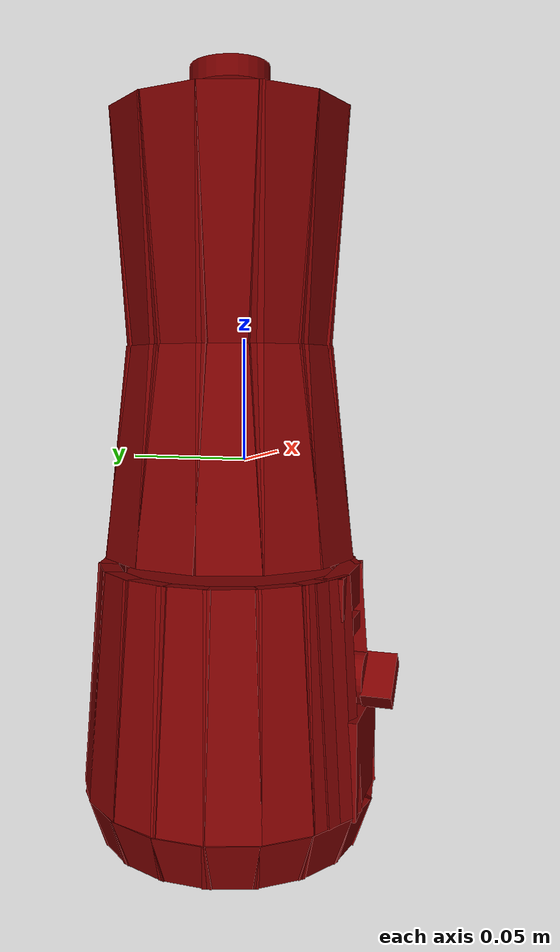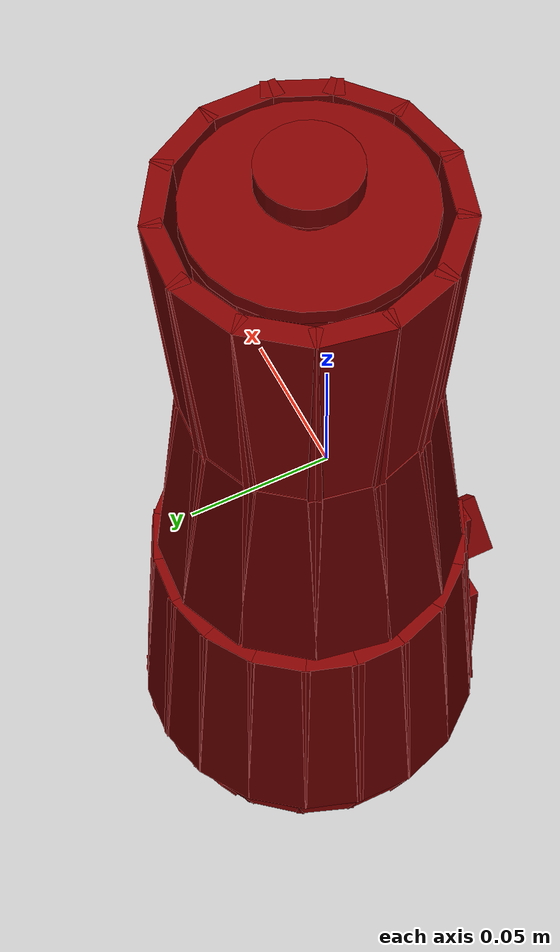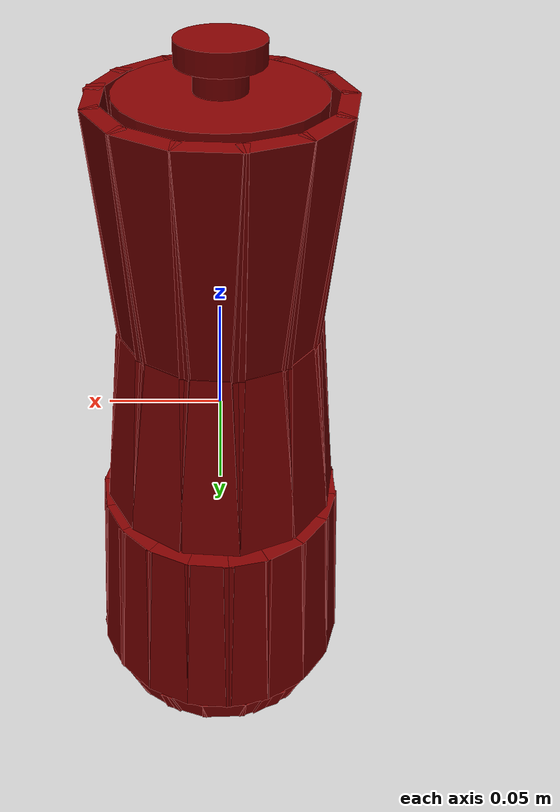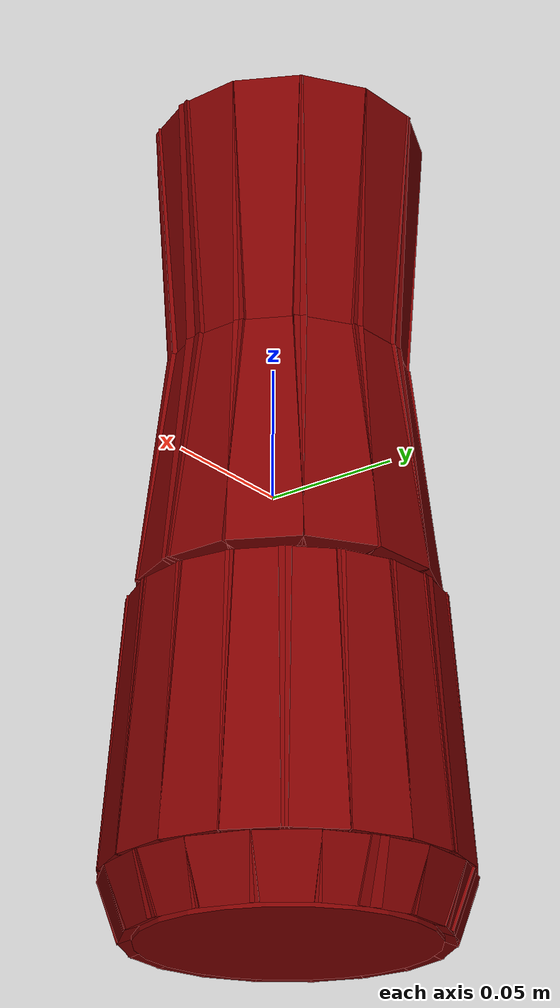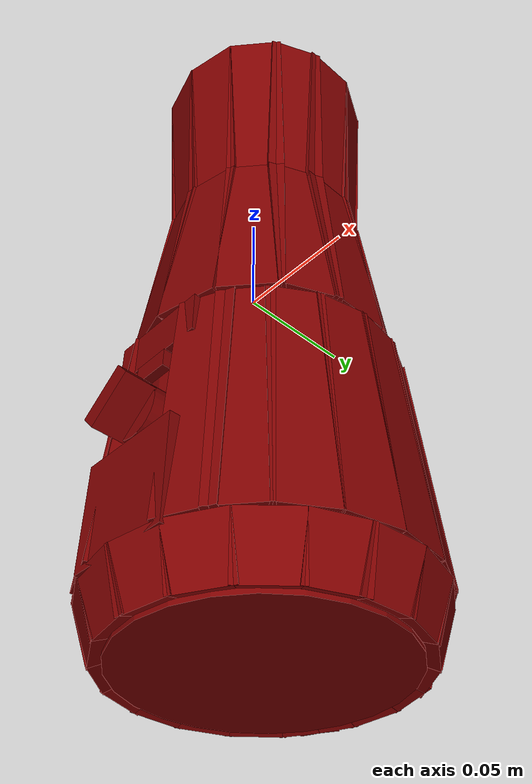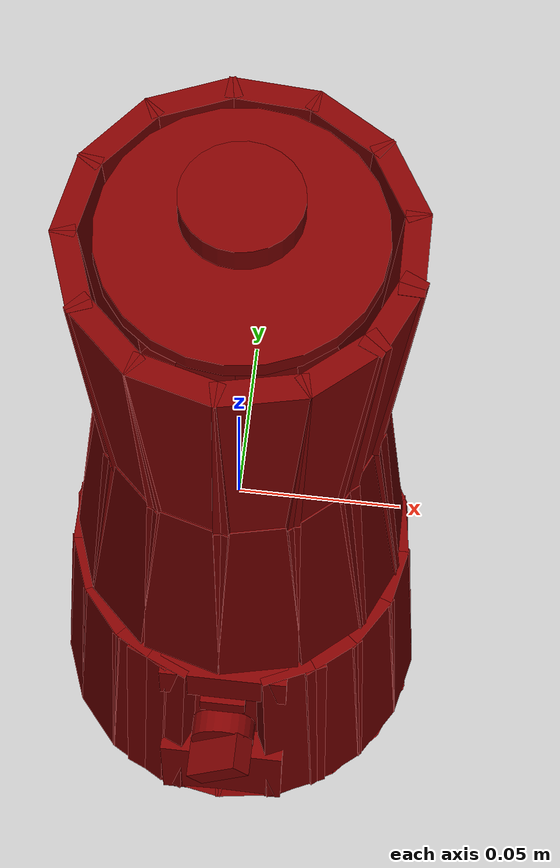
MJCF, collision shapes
<?xml version='1.0' encoding='UTF-8'?>
<mujoco model="model">
  <option timestep="0.002" gravity="0.0 0.0 -9.81"/>
  <compiler angle="radian"/>
  <asset>
    <mesh file="visuals/Blade001.obj" name="Blade001_vis"/>
    <mesh file="visuals/Body001.obj" name="Body001_vis"/>
    <mesh file="visuals/Button001.obj" name="Button001_vis"/>
    <mesh file="visuals/Jug001.obj" name="Jug001_vis"/>
    <mesh file="visuals/Jug001_Clear.obj" name="Jug001_Clear_vis"/>
    <mesh file="visuals/Knob001.obj" name="Knob001_vis"/>
    <mesh file="visuals/Lid001.obj" name="Lid001_vis"/>
    <texture file="visuals/T_BC001.png" name="Body001_material" type="2d"/>
    <material name="Body001_material" rgba="1 1 1 1.0" texture="Body001_material" shininess="0.4472135901451111" specular="1"/>
    <texture file="visuals/T_BC001.png" name="Button001_material" type="2d"/>
    <material name="Button001_material" rgba="1 1 1 1.0" texture="Button001_material" shininess="0.4472135901451111" specular="0.3103448502657381"/>
    <texture file="visuals/T_BC001.png" name="Jug001_Clear_material" type="2d"/>
    <material name="Jug001_Clear_material" rgba="1 1 1 0.800000011920929" texture="Jug001_Clear_material" shininess="0.72135901451111" specular="0.3103448502657381"/>
    <texture file="visuals/T_BC001.png" name="Blade001_material" type="2d"/>
    <material name="Blade001_material" rgba="1 1 1 1.0" texture="Blade001_material" shininess="0.4472135901451111" specular="0.3103448502657381"/>
    <texture file="visuals/T_BC001.png" name="Jug001_material" type="2d"/>
    <material name="Jug001_material" rgba="1 1 1 1.0" texture="Jug001_material" shininess="0.4472135901451111" specular="0.3103448502657381"/>
    <texture file="visuals/T_BC001.png" name="Lid001_material" type="2d"/>
    <material name="Lid001_material" rgba="1 1 1 1.0" texture="Lid001_material" shininess="0.4472135901451111" specular="0.3103448502657381"/>
    <texture file="visuals/T_BC001.png" name="Knob001_material" type="2d"/>
    <material name="Knob001_material" rgba="1 1 1 1.0" texture="Knob001_material" shininess="0.4472135901451111" specular="0.3103448502657381"/>
  </asset>
  <default>
    <default class="visual">
      <geom conaffinity="0" contype="0" group="1" type="mesh"/>
    </default>
    <default class="collision">
      <geom group="0" rgba="0.5 0 0 0.5"/>
    </default>
    <default class="spawn">
      <geom group="0" rgba="1 1 1 0.5" contype="0" conaffinity="0"/>
      <site group="0" rgba="1 1 1 0.5"/>
    </default>
    <default class="region">
      <geom group="1" conaffinity="0" contype="0" rgba="0 1 0 0"/>
    </default>
  </default>
  <worldbody>
    <body>
      <body name="object">
        <geom mesh="Body001_vis" type="mesh" solimp="0.998 0.998 0.001" solref="0.001 1" friction="0.95 0.3 0.1" class="visual" material="Body001_material"/>
        <geom class="collision" type="cylinder" pos="-0.000004 0.006465 -0.108803" size="0.05027838423848152 0.050639983266592026" quat="1.0 0.0 0.0 0.0" density="1000.0"/>
        <geom class="collision" type="box" pos="-0.000433 -0.048041 -0.120453" size="0.02084752358496189 0.00483823474496603 0.020090635865926743" quat="1.0 0.0 0.0 0.0" density="1000.0"/>
        <geom class="collision" type="box" pos="-0.000175 -0.042780 -0.052247" size="0.02063511684536934 0.00401512673124671 0.008426142856478691" quat="1.0 0.0 0.0 0.0" density="1000.0"/>
        <geom class="collision" type="box" pos="-0.053646 0.006466 -0.147579" size="0.004174570087343454 0.010854005813598633 0.010854005813598633" quat="0.985356867313385 5.595070839132361e-16 -0.17050467431545258 -2.290881262467792e-08" density="1000.0"/>
        <geom class="collision" type="box" pos="-0.054054 0.006466 -0.091214" size="0.004025053698569536 0.010854005813598633 0.047436073422431946" quat="0.9993108510971069 3.921987009518433e-16 0.03711973503232002 4.987374513376608e-09" density="1000.0"/>
        <geom class="collision" type="box" pos="-0.050305 0.025101 -0.147579" size="0.004174570087343454 0.010854005813598633 0.010854005813598633" quat="0.9698918461799622 -0.03008975461125374 -0.16782867908477783 -0.17389050126075745" density="1000.0"/>
        <geom class="collision" type="box" pos="-0.041065 0.040983 -0.147579" size="0.004174570087343454 0.010854005813598633 0.010854004882276058" quat="0.9257819652557373 -0.05838760733604431 -0.16019588708877563 -0.33742547035217285" density="1000.0"/>
        <geom class="collision" type="box" pos="-0.026516 0.053098 -0.147579" size="0.004174570087343454 0.010854005813598633 0.010854004882276058" quat="0.8517047762870789 -0.08574175089597702 -0.14737769961357117 -0.4955069422721863" density="1000.0"/>
        <geom class="collision" type="box" pos="-0.010051 -0.046228 -0.147579" size="0.004174570087343454 0.010854005813598633 0.010854004882276058" quat="0.7592028379440308 0.1086895614862442 -0.13137130439281464 0.6281235814094543" density="1000.0"/>
        <geom class="collision" type="box" pos="-0.027731 -0.039455 -0.147579" size="0.004174570087343454 0.010854005813598633 0.010854004882276058" quat="0.8581354022026062 0.08379990607500076 -0.14849039912223816 0.4842848777770996" density="1000.0"/>
        <geom class="collision" type="box" pos="-0.041601 -0.027405 -0.147579" size="0.004174570087343454 0.010854004882276058 0.010854004882276058" quat="0.9283958673477173 0.057131316512823105 -0.1606481820344925 0.33016547560691833" density="1000.0"/>
        <geom class="collision" type="box" pos="-0.050777 -0.010844 -0.147579" size="0.004174570087343454 0.010854005813598633 0.010854006744921207" quat="0.9720907211303711 0.027884377166628838 -0.16820929944515228 0.1611451506614685" density="1000.0"/>
        <geom class="collision" type="box" pos="0.049844 -0.013353 -0.147579" size="0.004174570087343454 0.010854004882276058 0.010854004882276058" quat="0.18532882630825043 0.16746164858341217 -0.03206900879740715 0.9677713513374329" density="1000.0"/>
        <geom class="collision" type="box" pos="0.039854 -0.029436 -0.147579" size="0.004174570087343454 0.010854005813598633 0.010854004882276058" quat="0.35320740938186646 0.15917399525642395 -0.06111845746636391 0.9198764562606812" density="1000.0"/>
        <geom class="collision" type="box" pos="0.025401 -0.040780 -0.147579" size="0.004174570087343454 0.010854005813598633 0.010854004882276058" quat="0.5055273175239563 0.14635516703128815 -0.08747565746307373 0.8457956910133362" density="1000.0"/>
        <geom class="collision" type="box" pos="0.007405 -0.046663 -0.147579" size="0.004174570087343454 0.010854005813598633 0.010854004882276058" quat="0.646854817867279 0.12862089276313782 -0.1119307428598404 0.7433081865310669" density="1000.0"/>
        <geom class="collision" type="box" pos="0.029170 0.051481 -0.147579" size="0.004174570087343454 0.010854004882276058 0.010854005813598633" quat="0.4705747365951538 -0.1498044729232788 -0.08142750710248947 -0.8657295107841492" density="1000.0"/>
        <geom class="collision" type="box" pos="0.042992 0.038542 -0.147579" size="0.004174570087343454 0.010854006744921207 0.010854005813598633" quat="0.3104095458984375 -0.16182319819927216 -0.05371277779340744 -0.9351866841316223" density="1000.0"/>
        <geom class="collision" type="box" pos="0.051295 0.022151 -0.147579" size="0.004174570087343454 0.010854005813598633 0.010854004882276058" quat="0.145663321018219 -0.16863130033016205 -0.02520536258816719 -0.9745308756828308" density="1000.0"/>
        <geom class="collision" type="box" pos="0.053549 0.003353 -0.147579" size="0.004174570087343454 0.010854005813598633 0.010854006744921207" quat="0.028603164479136467 0.17043240368366241 -0.004949431866407394 0.9849417209625244" density="1000.0"/>
        <geom class="collision" type="box" pos="-0.019830 0.056310 -0.147579" size="0.004174570087343454 0.010854005813598633 0.010854004882276058" quat="0.8154098391532898 -0.09572560340166092 -0.14109724760055542 -0.5532042980194092" density="1000.0"/>
        <geom class="collision" type="box" pos="-0.001847 0.060076 -0.147579" size="0.004174570087343454 0.010854004882276058 0.010854004882276058" quat="0.7086209058761597 -0.11847569048404694 -0.1226186603307724 -0.6846784949302673" density="1000.0"/>
        <geom class="collision" type="box" pos="0.016893 0.057377 -0.147579" size="0.004174570087343454 0.010854005813598633 0.010854005813598633" quat="0.5766705870628357 -0.13825532793998718 -0.0997861847281456 -0.7989863753318787" density="1000.0"/>
        <geom class="collision" type="box" pos="-0.027756 -0.039916 -0.091214" size="0.004025053698569536 0.010854003950953484 0.04743606224656105" quat="0.8693017959594727 -0.018308410421013832 0.0322905033826828 0.49288591742515564" density="1000.0"/>
        <geom class="collision" type="box" pos="-0.041645 -0.027995 -0.091214" size="0.004025053698569536 0.010854006744921207 0.047436073422431946" quat="0.9402043223381042 -0.012576751410961151 0.034924205392599106 0.33858224749565125" density="1000.0"/>
        <geom class="collision" type="box" pos="-0.050955 -0.011574 -0.091214" size="0.004025053698569536 0.010854006744921207 0.047436073422431946" quat="0.9848824739456177 -0.00628496753051877 0.03658371791243553 0.16919994354248047" density="1000.0"/>
        <geom class="collision" type="box" pos="-0.011973 0.059174 -0.091214" size="0.004025053698569536 0.010854005813598633 0.047436073422431946" quat="0.7809489965438843 0.023159775882959366 0.029008612036705017 -0.6234908103942871" density="1000.0"/>
        <geom class="collision" type="box" pos="-0.051380 0.023258 -0.091214" size="0.004025053698569536 0.010854004882276058 0.047436073422431946" quat="0.9868703484535217 0.0058389282785356045 0.03665771707892418 -0.1571912169456482" density="1000.0"/>
        <geom class="collision" type="box" pos="-0.042829 0.039442 -0.091214" size="0.004025053698569536 0.010854005813598633 0.047436073422431946" quat="0.9460065364837646 0.011961390264332294 0.035139743238687515 -0.3220151960849762" density="1000.0"/>
        <geom class="collision" type="box" pos="-0.028878 0.052158 -0.091214" size="0.004025053698569536 0.010854005813598633 0.047436073422431946" quat="0.8752408027648926 0.01791374571621418 0.032511115074157715 -0.48226097226142883" density="1000.0"/>
        <geom class="collision" type="box" pos="0.037899 0.045000 -0.091214" size="0.004025053698569536 0.010854004882276058 0.047436073422431946" quat="0.3862343728542328 0.034235093742609024 0.014346794225275517 -0.9216535091400146" density="1000.0"/>
        <geom class="collision" type="box" pos="0.004629 0.060317 -0.091214" size="0.004025053698569536 0.010854005813598633 0.047436073422431946" quat="0.6756603717803955 0.027349237352609634 0.02509755641222 -0.7362779378890991" density="1000.0"/>
        <geom class="collision" type="box" pos="0.022865 0.055440 -0.091214" size="0.004025053698569536 0.010854004882276058 0.047436073422431946" quat="0.5367090106010437 0.031311675906181335 0.019936243072152138 -0.8429505228996277" density="1000.0"/>
        <geom class="collision" type="box" pos="0.045968 -0.021963 -0.091214" size="0.004025053698569536 0.010854005813598633 0.047436073422431946" quat="0.2732015550136566 -0.03570559248328209 0.010148162953555584 0.9612403512001038" density="1000.0"/>
        <geom class="collision" type="box" pos="0.047995 0.031317 -0.091214" size="0.004025053698569536 0.010854005813598633 0.047436073422431946" quat="0.23645034432411194 0.03606566786766052 0.008783024735748768 -0.970934271812439" density="1000.0"/>
        <geom class="collision" type="box" pos="0.053537 0.013873 -0.091214" size="0.004025053698569536 0.010854005813598633 0.04743606969714165" quat="0.06864112615585327 0.03703196346759796 0.0025496911257505417 -0.996950626373291" density="1000.0"/>
        <geom class="collision" type="box" pos="0.052819 -0.004990 -0.091214" size="0.004025053698569536 0.010854004882276058 0.047436073422431946" quat="0.10650292783975601 -0.03690831735730171 0.003956086467951536 0.9936192631721497" density="1000.0"/>
        <geom class="collision" type="box" pos="0.034532 -0.035113 -0.091214" size="0.004025053698569536 0.010854005813598633 0.047436073422431946" quat="0.4245893955230713 -0.033602576702833176 0.01577151007950306 0.9046247601509094" density="1000.0"/>
        <geom class="collision" type="box" pos="0.022509 -0.042674 -0.091214" size="0.004025053698569536 0.010854005813598633 0.04743606597185135" quat="0.5397603511810303 -0.031239204108715057 0.0200495645403862 0.840999960899353" density="1000.0"/>
        <geom class="collision" type="box" pos="-0.021988 -0.042912 -0.091214" size="0.004025051835924387 0.010854003019630909 0.047436054795980453" quat="0.838092565536499 -0.02021685242652893 0.0311311986297369 0.5442637205123901" density="1000.0"/>
        <body name="Button001">
          <joint axis="0.0 1.0 0.0" pos="-0.000039 -0.045663 -0.066268" limited="true" name="Button001_joint" range="0.0 0.002" type="slide" damping="1" frictionloss="1" armature=".01" stiffness="0.05"/>
          <geom mesh="Button001_vis" type="mesh" solimp="0.998 0.998 0.001" solref="0.001 1" friction="0.95 0.3 0.1" class="visual" material="Button001_material"/>
          <geom class="collision" type="box" pos="-0.000233 -0.046436 -0.066123" size="0.00738384947180748 0.0018029806669801474 0.003648989135399461" quat="1.0 0.0 0.0 0.0" density="1000.0"/>
        </body>
        <body name="Jug001_Clear">
          <geom class="region" name="reg_int" type="box" pos="4.350000000000187e-05 0.006843999999999999 0.041210000000000004" size="0.0461735 0.046208 0.09864500000000001"/>
          <joint axis="0.0 0.0 1.0" pos="-0.000083 0.006578 0.041124" limited="true" name="Jug001_Clear_joint" range="0.0 0.05" type="slide" damping="1" frictionloss="1" armature=".01" stiffness="0.05"/>
          <geom mesh="Jug001_Clear_vis" type="mesh" solimp="0.998 0.998 0.001" solref="0.001 1" friction="0.95 0.3 0.1" class="visual" material="Jug001_Clear_material"/>
          <geom class="collision" type="box" pos="0.043332 0.006466 0.003554" size="0.0035044727846980095 0.012674807570874691 0.04332708194851875" quat="0.9983056783676147 2.03593347421812e-15 -0.05818738788366318 -7.81798892290908e-09" density="1000.0"/>
          <geom class="collision" type="box" pos="0.041321 0.006466 0.092315" size="0.0035068036522716284 0.012674807570874691 0.048212192952632904" quat="0.9992659687995911 2.597304771769144e-15 0.03830774500966072 5.146993053983806e-09" density="1000.0"/>
          <geom class="collision" type="box" pos="0.037968 0.027350 0.003554" size="0.003504473017528653 0.012674807570874691 0.04332708567380905" quat="0.9669170379638672 0.014476297423243523 -0.05635787919163704 0.24836596846580505" density="1000.0"/>
          <geom class="collision" type="box" pos="0.036206 0.026381 0.092315" size="0.003506803885102272 0.012674806639552116 0.0482121966779232" quat="0.9678471684455872 -0.009530461393296719 0.03710317239165306 0.248604878783226" density="1000.0"/>
          <geom class="collision" type="box" pos="0.023699 0.042745 0.003554" size="0.003504473017528653 0.012674807570874691 0.04332708194851875" quat="0.8779835104942322 0.02769414521753788 -0.05117426812648773 0.4751411974430084" density="1000.0"/>
          <geom class="collision" type="box" pos="0.022599 0.041061 0.092315" size="0.003506803885102272 0.012674807570874691 0.0482121966779232" quat="0.8788281083106995 -0.018232425674796104 0.03369055688381195 0.47559821605682373" density="1000.0"/>
          <geom class="collision" type="box" pos="0.003281 0.049677 0.003554" size="0.003504473017528653 0.012674807570874691 0.04332708194851875" quat="0.732168972492218 0.0395549014210701 -0.04267530143260956 0.6786330938339233" density="1000.0"/>
          <geom class="collision" type="box" pos="0.003128 0.047671 0.092315" size="0.003506803885102272 0.012674807570874691 0.0482121966779232" quat="0.7328732013702393 -0.02604093588888645 0.028095250949263573 0.6792859435081482" density="1000.0"/>
          <geom class="collision" type="box" pos="-0.016928 0.046360 0.003554" size="0.003504473017528653 0.012674807570874691 0.04332708194851875" quat="0.5510849952697754 0.048518408089876175 -0.032120585441589355 0.832417905330658" density="1000.0"/>
          <geom class="collision" type="box" pos="-0.016143 0.044508 0.092315" size="0.0035068036522716284 0.012674807570874691 0.0482121966779232" quat="0.5516152381896973 -0.03194207698106766 0.02114659734070301 0.8332185745239258" density="1000.0"/>
          <geom class="collision" type="box" pos="-0.034059 0.033265 0.003554" size="0.003504473017528653 0.012674807570874691 0.04332708194851875" quat="0.3266628086566925 0.054984088987112045 -0.019039904698729515 0.9433481097221375" density="1000.0"/>
          <geom class="collision" type="box" pos="-0.032479 0.032021 0.092315" size="0.003506803885102272 0.012674807570874691 0.0482121966779232" quat="0.3269769251346588 -0.03619876131415367 0.012534912675619125 0.9442555904388428" density="1000.0"/>
          <geom class="collision" type="box" pos="-0.042659 0.014117 0.003554" size="0.003504473017528653 0.012674807570874691 0.04332708939909935" quat="0.08847763389348984 0.057958297431468964 -0.005157010164111853 0.9943771958351135" density="1000.0"/>
          <geom class="collision" type="box" pos="-0.040679 0.013762 0.092315" size="0.0035068036522716284 0.012674807570874691 0.048212192952632904" quat="0.0885627493262291 -0.038156695663928986 0.0033951096702367067 0.995333731174469" density="1000.0"/>
          <geom class="collision" type="box" pos="-0.041066 -0.007387 0.003554" size="0.003504473017528653 0.012674807570874691 0.04332708194851875" quat="0.16169296205043793 -0.057419054210186005 -0.009424450807273388 -0.9851241707801819" density="1000.0"/>
          <geom class="collision" type="box" pos="-0.039160 -0.006744 0.092315" size="0.003506803885102272 0.012674807570874691 0.0482121966779232" quat="0.1618485003709793 0.03780172020196915 0.006204573903232813 -0.9860718250274658" density="1000.0"/>
          <geom class="collision" type="box" pos="-0.030333 -0.024488 0.003554" size="0.003504473017528653 0.012674807570874691 0.04332708194851875" quat="0.3867202699184418 -0.053644176572561264 -0.022540420293807983 -0.9203595519065857" density="1000.0"/>
          <geom class="collision" type="box" pos="-0.028926 -0.023051 0.092315" size="0.0035068041179329157 0.012674807570874691 0.0482121966779232" quat="0.38709238171577454 0.03531663864850998 0.014839478768408298 -0.9212448000907898" density="1000.0"/>
          <geom class="collision" type="box" pos="-0.011662 -0.035273 0.003554" size="0.0035044727846980095 0.012674808502197266 0.04332708194851875" quat="0.6035350561141968 -0.04634973034262657 -0.035177696496248245 -0.7952104806900024" density="1000.0"/>
          <geom class="collision" type="box" pos="-0.011121 -0.033336 0.092315" size="0.0035068036522716284 0.012674807570874691 0.0482121966779232" quat="0.6041155457496643 0.03051433339715004 0.023159237578511238 -0.7959754467010498" density="1000.0"/>
          <geom class="collision" type="box" pos="0.009321 -0.035856 0.003554" size="0.003504473017528653 0.012674807570874691 0.04332708194851875" quat="0.7781533598899841 -0.0364505834877491 -0.04535554721951485 -0.6253731846809387" density="1000.0"/>
          <geom class="collision" type="box" pos="0.008888 -0.033891 0.092315" size="0.0035068041179329157 0.012674807570874691 0.0482121966779232" quat="0.7789018750190735 0.023997221142053604 0.029859796166419983 -0.6259747743606567" density="1000.0"/>
          <geom class="collision" type="box" pos="0.028562 -0.026123 0.003554" size="0.0035044727846980095 0.012674806639552116 0.04332708194851875" quat="0.9092717170715332 -0.024020615965127945 -0.052997905761003494 -0.41211551427841187" density="1000.0"/>
          <geom class="collision" type="box" pos="0.027236 -0.024611 0.092315" size="0.003506803885102272 0.012674806639552116 0.0482121966779232" quat="0.9101463556289673 0.01581396348774433 0.03489115461707115 -0.41251200437545776" density="1000.0"/>
          <geom class="collision" type="box" pos="0.039590 -0.011152 0.003554" size="0.003504473017528653 0.012674807570874691 0.04332708194851875" quat="0.9765130281448364 -0.012091603130102158 -0.05691717192530632 -0.20745247602462769" density="1000.0"/>
          <geom class="collision" type="box" pos="0.037752 -0.010335 0.092315" size="0.0035068041179329157 0.012674807570874691 0.0482121966779232" quat="0.9774523973464966 0.007960498332977295 0.03747131675481796 -0.2076520472764969" density="1000.0"/>
          <body name="Blade001">
            <joint axis="0.0 0.0 1.0" pos="-0.000002 0.006444 -0.036687" limited="false" name="Blade001_joint" range="0 360" type="hinge" damping="1" frictionloss="1" armature=".01" stiffness="0.05"/>
            <geom mesh="Blade001_vis" type="mesh" solimp="0.998 0.998 0.001" solref="0.001 1" friction="0.95 0.3 0.1" class="visual" material="Blade001_material"/>
            <geom class="collision" type="cylinder" pos="-0.000004 0.006465 -0.032502" size="0.031703922897577286 0.010557914152741432" quat="1.0 0.0 0.0 0.0" density="1000.0"/>
          </body>
          <body name="Jug001">
            <geom mesh="Jug001_vis" type="mesh" solimp="0.998 0.998 0.001" solref="0.001 1" friction="0.95 0.3 0.1" class="visual" material="Jug001_material"/>
            <geom class="collision" type="cylinder" pos="-0.000004 0.006465 -0.052098" size="0.044104933738708496 0.004458223003894091" quat="1.0 0.0 0.0 0.0" density="1000.0"/>
          </body>
          <body name="Lid001">
            <joint axis="0.0 0.0 1.0" pos="-0.000110 0.006578 0.145474" limited="true" name="Lid001_joint" range="0.0 0.05" type="slide" damping="1" frictionloss="1" armature=".01" stiffness="0.05"/>
            <geom mesh="Lid001_vis" type="mesh" solimp="0.998 0.998 0.001" solref="0.001 1" friction="0.95 0.3 0.1" class="visual" material="Lid001_material"/>
            <geom class="collision" type="cylinder" pos="-0.000004 0.006465 0.139297" size="0.03886698558926582 0.002786661498248577" quat="1.0 0.0 0.0 0.0" density="1000.0"/>
            <geom class="collision" type="cylinder" pos="-0.000004 0.006465 0.147533" size="0.009959487244486809 0.006921137683093548" quat="1.0 0.0 0.0 0.0" density="1000.0"/>
            <geom class="collision" type="cylinder" pos="-0.000004 0.006465 0.155768" size="0.016482291743159294 0.00413268618285656" quat="1.0 0.0 0.0 0.0" density="1000.0"/>
          </body>
        </body>
        <body name="Knob001">
          <joint axis="0.0 1.0 0.0" pos="-0.000054 -0.047618 -0.088661" limited="true" name="Knob001_joint" range="0.0 4.537856055185257" type="hinge" damping="0.05" armature="0.001" springref="-0.4"/>
          <geom mesh="Knob001_vis" type="mesh" solimp="0.998 0.998 0.001" solref="0.001 1" friction="0.95 0.3 0.1" class="visual" material="Knob001_material"/>
          <geom class="collision" type="cylinder" pos="-0.000054 -0.048480 -0.088661" size="0.010512183420360088 0.0038811657577753067" quat="0.7071067094802856 0.7071068286895752 0.0 0.0" density="1000.0"/>
          <geom class="collision" type="box" pos="-0.000203 -0.058092 -0.088587" size="0.003975735977292061 0.006238631904125214 0.010526491329073906" quat="0.9099612236022949 0.0 0.41469329595565796 0.0" density="1000.0"/>
        </body>
        <geom class="region" name="reg_main" type="box" pos="0.0 0.005763999999999998 0.0" size="0.057867 0.058565 0.159289"/>
      </body>
    </body>
  </worldbody>
  <actuator>
    <motor name="Button001_joint_actuator" joint="Button001_joint" gear="0.5"/>
    <motor name="Jug001_Clear_joint_actuator" joint="Jug001_Clear_joint" gear="30"/>
    <motor name="Knob001_joint_actuator" joint="Knob001_joint" gear="10"/>
    <motor name="Blade001_joint_actuator" joint="Blade001_joint" gear="20"/>
    <motor name="Lid001_joint_actuator" joint="Lid001_joint" gear="10"/>
  </actuator>
</mujoco>
